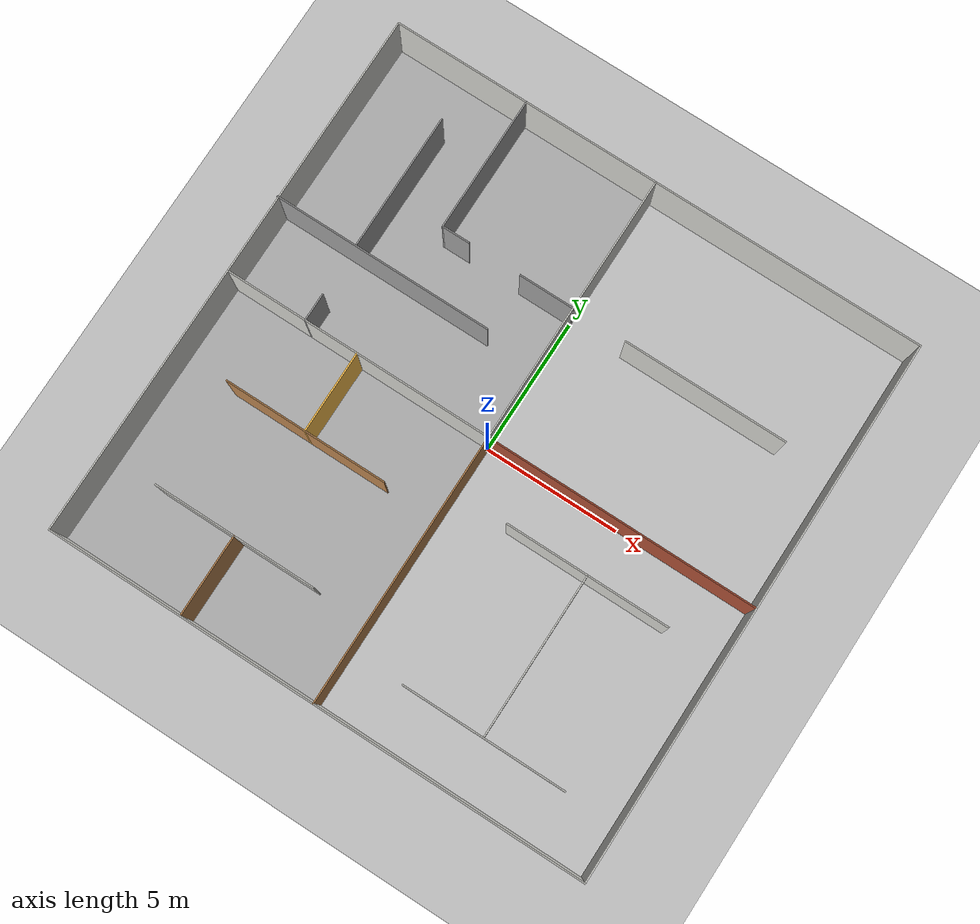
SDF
<sdf version="1.6">
 <world name="default">
  <model name="ground_plane">
   <static>1</static>
   <link name="link">
    <collision name="collision">
     <geometry><plane><normal>0 0 1</normal><size>100 100</size></plane></geometry>
     <surface><friction><ode><mu>100</mu><mu2>50</mu2></ode></friction></surface>
    </collision>
    <visual name="visual">
     <cast_shadows>0</cast_shadows>
     <geometry><plane><normal>0 0 1</normal><size>100 100</size></plane></geometry>
     <material>
      <script><uri>file://media/materials/scripts/gazebo.material</uri><name>Gazebo/Grey</name></script>
     </material>
    </visual>
   </link>
  </model>
  <model name="Floor_room2">
   <link name="main">
    <pose>0 0 0.01 0 -0 0</pose>
    <collision name="main_Collision">
     <geometry><box><size>10 10 0.001</size></box></geometry>
     <surface><friction><ode><mu>100</mu><mu2>100</mu2></ode></friction></surface>
    </collision>
    <visual name="main_Visual">
     <geometry><box><size>10 10 0.001</size></box></geometry>
     <material>
      <script>
       <uri>file:///home/linhai/.gazebo/models/Floor_room2/materials/scripts</uri>
       <uri>file:///home/linhai/.gazebo/models/Floor_room2/materials/textures</uri>
       <name>floor_room2</name>
      </script>
     </material>
    </visual>
   </link>
   <static>1</static>
   <pose>-4.9783 5.02752 -0.01 0 -0 0</pose>
  </model>
  <model name="Floor_room3">
   <link name="main">
    <pose>0 0 0.01 0 -0 0</pose>
    <collision name="main_Collision">
     <geometry><box><size>10 10 0.001</size></box></geometry>
     <surface><friction><ode><mu>100</mu><mu2>100</mu2></ode></friction></surface>
    </collision>
    <visual name="main_Visual">
     <geometry><box><size>10 10 0.001</size></box></geometry>
     <material>
      <script>
       <uri>file:///home/linhai/.gazebo/models/Floor_room3/materials/scripts</uri>
       <uri>file:///home/linhai/.gazebo/models/Floor_room3/materials/textures</uri>
       <name>floor_room3</name>
      </script>
     </material>
    </visual>
   </link>
   <static>1</static>
   <pose>-5.00295 -4.97669 -0.01 0 -0 0</pose>
  </model>
  <model name="20x20_4_closed_room">
   <pose>-0.009815 0.003303 0 0 -0 0</pose>
   <link name="Wall_12">
    <collision name="Wall_12_Collision">
     <geometry><box><size>10.05 0.05 2.5</size></box></geometry>
     <pose>0 0 1.25 0 -0 0</pose>
    </collision>
    <visual name="Wall_12_Visual">
     <pose>0 0 1.25 0 -0 0</pose>
     <geometry><box><size>10.05 0.05 2.5</size></box></geometry>
     <material>
      <script><uri>file://media/materials/scripts/gazebo.material</uri><name>Gazebo/CeilingTiled</name></script>
      <ambient>1 0.764706 0.305882 1</ambient>
     </material>
    </visual>
    <pose>10.0205 5.00012 0 0 0 -1.5708</pose>
   </link>
   <link name="Wall_13">
    <collision name="Wall_13_Collision">
     <geometry><box><size>10.05 0.05 2.5</size></box></geometry>
     <pose>0 0 1.25 0 -0 0</pose>
    </collision>
    <visual name="Wall_13_Visual">
     <pose>0 0 1.25 0 -0 0</pose>
     <geometry><box><size>10.05 0.05 2.5</size></box></geometry>
     <material>
      <script><uri>file://media/materials/scripts/gazebo.material</uri><name>Gazebo/Bricks</name></script>
      <ambient>0.996078 0.47451 0.0196078 1</ambient>
     </material>
    </visual>
    <pose>5.02047 0.000125 0 0 -0 3.14159</pose>
   </link>
   <link name="Wall_16">
    <collision name="Wall_16_Collision">
     <geometry><box><size>10.05 0.05 2.5</size></box></geometry>
     <pose>0 0 1.25 0 -0 0</pose>
    </collision>
    <visual name="Wall_16_Visual">
     <pose>0 0 1.25 0 -0 0</pose>
     <geometry><box><size>10.05 0.05 2.5</size></box></geometry>
     <material>
      <script><uri>file://media/materials/scripts/gazebo.material</uri><name>Gazebo/CeilingTiled</name></script>
      <ambient>0.435294 0.796078 0.67451 1</ambient>
     </material>
    </visual>
    <pose>-9.97953 -4.99988 0 0 0 -1.5708</pose>
   </link>
   <link name="Wall_17">
    <collision name="Wall_17_Collision">
     <geometry><box><size>10.05 0.05 2.5</size></box></geometry>
     <pose>0 0 1.25 0 -0 0</pose>
    </collision>
    <visual name="Wall_17_Visual">
     <pose>0 0 1.25 0 -0 0</pose>
     <geometry><box><size>10.05 0.05 2.5</size></box></geometry>
     <material>
      <script><uri>file://media/materials/scripts/gazebo.material</uri><name>Gazebo/CeilingTiled</name></script>
      <ambient>0.435294 0.796078 0.67451 1</ambient>
     </material>
    </visual>
    <pose>-4.97953 -9.99987 0 0 -0 0</pose>
   </link>
   <link name="Wall_18">
    <collision name="Wall_18_Collision">
     <geometry><box><size>10.0505 0.05 2.5</size></box></geometry>
     <pose>0 0 1.25 0 -0 0</pose>
    </collision>
    <visual name="Wall_18_Visual">
     <pose>0 0 1.25 0 -0 0</pose>
     <geometry><box><size>10.0505 0.05 2.5</size></box></geometry>
     <material>
      <script><uri>file://media/materials/scripts/gazebo.material</uri><name>Gazebo/Wood</name></script>
      <ambient>0.435294 0.796078 0.67451 1</ambient>
     </material>
    </visual>
    <pose>0.02047 -4.99988 0 0 -0 1.5708</pose>
   </link>
   <link name="Wall_20">
    <collision name="Wall_20_Collision">
     <geometry><box><size>10.05 0.05 2.5</size></box></geometry>
     <pose>0 0 1.25 0 -0 0</pose>
    </collision>
    <visual name="Wall_20_Visual">
     <pose>0 0 1.25 0 -0 0</pose>
     <geometry><box><size>10.05 0.05 2.5</size></box></geometry>
     <material>
      <script><uri>file://media/materials/scripts/gazebo.material</uri><name>Gazebo/CeilingTiled</name></script>
      <ambient>0.760784 0.662745 0.627451 1</ambient>
     </material>
    </visual>
    <pose>5.02047 -9.99987 0 0 -0 0</pose>
   </link>
   <link name="Wall_21">
    <collision name="Wall_21_Collision">
     <geometry><box><size>10.05 0.05 2.5</size></box></geometry>
     <pose>0 0 1.25 0 -0 0</pose>
    </collision>
    <visual name="Wall_21_Visual">
     <pose>0 0 1.25 0 -0 0</pose>
     <geometry><box><size>10.05 0.05 2.5</size></box></geometry>
     <material>
      <script><uri>file://media/materials/scripts/gazebo.material</uri><name>Gazebo/CeilingTiled</name></script>
      <ambient>0.760784 0.662745 0.627451 1</ambient>
     </material>
    </visual>
    <pose>10.0205 -4.99988 0 0 -0 1.5708</pose>
   </link>
   <link name="Wall_27">
    <collision name="Wall_27_Collision">
     <geometry><box><size>5.05025 0.05 2.5</size></box></geometry>
     <pose>0 0 1.25 0 -0 0</pose>
    </collision>
    <visual name="Wall_27_Visual">
     <pose>0 0 1.25 0 -0 0</pose>
     <geometry><box><size>5.05025 0.05 2.5</size></box></geometry>
     <material>
      <script><uri>file://media/materials/scripts/gazebo.material</uri><name>Gazebo/Grey</name></script>
      <ambient>1 1 1 1</ambient>
     </material>
    </visual>
    <pose>-6.97953 5.50012 0 0 -0 1.5708</pose>
   </link>
   <link name="Wall_29">
    <collision name="Wall_29_Collision">
     <geometry><box><size>5.05 0.05 2.5</size></box></geometry>
     <pose>0 0 1.25 0 -0 0</pose>
    </collision>
    <visual name="Wall_29_Visual">
     <pose>0 0 1.25 0 -0 0</pose>
     <geometry><box><size>5.05 0.05 2.5</size></box></geometry>
     <material>
      <script><uri>file://media/materials/scripts/gazebo.material</uri><name>Gazebo/Grey</name></script>
      <ambient>1 1 1 1</ambient>
     </material>
    </visual>
    <pose>-4.97953 7.50012 0 0 -0 1.5708</pose>
   </link>
   <link name="Wall_3">
    <collision name="Wall_3_Collision">
     <geometry><box><size>10.05 0.05 2.5</size></box></geometry>
     <pose>0 0 1.25 0 -0 0</pose>
    </collision>
    <visual name="Wall_3_Visual">
     <pose>0 0 1.25 0 -0 0</pose>
     <geometry><box><size>10.05 0.05 2.5</size></box></geometry>
     <material>
      <script><uri>file://media/materials/scripts/gazebo.material</uri><name>Gazebo/CeilingTiled</name></script>
      <ambient>1 1 1 1</ambient>
     </material>
    </visual>
    <pose>-4.97953 10.0001 0 0 -0 0</pose>
   </link>
   <link name="Wall_31">
    <collision name="Wall_31_Collision">
     <geometry><box><size>1.05 0.05 2.5</size></box></geometry>
     <pose>0 0 1.25 0 -0 0</pose>
    </collision>
    <visual name="Wall_31_Visual">
     <pose>0 0 1.25 0 -0 0</pose>
     <geometry><box><size>1.05 0.05 2.5</size></box></geometry>
     <material>
      <script><uri>file://media/materials/scripts/gazebo.material</uri><name>Gazebo/Grey</name></script>
      <ambient>1 1 1 1</ambient>
     </material>
    </visual>
    <pose>-4.47953 5.00012 0 0 -0 0</pose>
   </link>
   <link name="Wall_33">
    <collision name="Wall_33_Collision">
     <geometry><box><size>2.05 0.05 2.5</size></box></geometry>
     <pose>0 0 1.25 0 -0 0</pose>
    </collision>
    <visual name="Wall_33_Visual">
     <pose>0 0 1.25 0 -0 0</pose>
     <geometry><box><size>2.05 0.05 2.5</size></box></geometry>
     <material>
      <script><uri>file://media/materials/scripts/gazebo.material</uri><name>Gazebo/Grey</name></script>
      <ambient>1 1 1 1</ambient>
     </material>
    </visual>
    <pose>-0.97953 5.00012 0 0 -0 0</pose>
   </link>
   <link name="Wall_37">
    <collision name="Wall_37_Collision">
     <geometry><box><size>1.05 0.05 2.5</size></box></geometry>
     <pose>0 0 1.25 0 -0 0</pose>
    </collision>
    <visual name="Wall_37_Visual">
     <pose>0 0 1.25 0 -0 0</pose>
     <geometry><box><size>1.05 0.05 2.5</size></box></geometry>
     <material>
      <script><uri>file://media/materials/scripts/gazebo.material</uri><name>Gazebo/Grey</name></script>
      <ambient>1 1 1 1</ambient>
     </material>
    </visual>
    <pose>-6.97953 0.500125 0 0 0 -1.5708</pose>
   </link>
   <link name="Wall_39">
    <collision name="Wall_39_Collision">
     <geometry><box><size>8.14988 0.05 2.5</size></box></geometry>
     <pose>0 0 1.25 0 -0 0</pose>
    </collision>
    <visual name="Wall_39_Visual">
     <pose>0 0 1.25 0 -0 0</pose>
     <geometry><box><size>8.14988 0.05 2.5</size></box></geometry>
     <material>
      <script><uri>file://media/materials/scripts/gazebo.material</uri><name>Gazebo/Grey</name></script>
      <ambient>1 1 1 1</ambient>
     </material>
    </visual>
    <pose>-5.97053 2.93213 0 0 -0 0</pose>
   </link>
   <link name="Wall_4">
    <collision name="Wall_4_Collision">
     <geometry><box><size>10.05 0.05 2.5</size></box></geometry>
     <pose>0 0 1.25 0 -0 0</pose>
    </collision>
    <visual name="Wall_4_Visual">
     <pose>0 0 1.25 0 -0 0</pose>
     <geometry><box><size>10.05 0.05 2.5</size></box></geometry>
     <material>
      <script><uri>file://media/materials/scripts/gazebo.material</uri><name>Gazebo/CeilingTiled</name></script>
      <ambient>1 1 1 1</ambient>
     </material>
    </visual>
    <pose>0.02047 5.00012 0 0 0 -1.5708</pose>
   </link>
   <link name="Wall_43">
    <collision name="Wall_43_Collision">
     <geometry><box><size>6.05 0.05 2.5</size></box></geometry>
     <pose>0 0 1.25 0 -0 0</pose>
    </collision>
    <visual name="Wall_43_Visual">
     <pose>0 0 1.25 0 -0 0</pose>
     <geometry><box><size>6.05 0.05 2.5</size></box></geometry>
     <material>
      <script><uri>file://media/materials/scripts/gazebo.material</uri><name>Gazebo/CeilingTiled</name></script>
      <ambient>0.435294 0.796078 0.67451 1</ambient>
     </material>
    </visual>
    <pose>5.02047 5.00012 0 0 -0 0</pose>
   </link>
   <link name="Wall_5">
    <collision name="Wall_5_Collision">
     <geometry><box><size>10.05 0.05 2.5</size></box></geometry>
     <pose>0 0 1.25 0 -0 0</pose>
    </collision>
    <visual name="Wall_5_Visual">
     <pose>0 0 1.25 0 -0 0</pose>
     <geometry><box><size>10.05 0.05 2.5</size></box></geometry>
     <material>
      <script><uri>file://media/materials/scripts/gazebo.material</uri><name>Gazebo/CeilingTiled</name></script>
      <ambient>1 1 1 1</ambient>
     </material>
    </visual>
    <pose>-4.97953 0.000125 0 0 -0 3.14159</pose>
   </link>
   <link name="Wall_51">
    <collision name="Wall_51_Collision">
     <geometry><box><size>6.05 0.05 2.5</size></box></geometry>
     <pose>0 0 1.25 0 -0 0</pose>
    </collision>
    <visual name="Wall_51_Visual">
     <pose>0 0 1.25 0 -0 0</pose>
     <geometry><box><size>6.05 0.05 2.5</size></box></geometry>
     <material>
      <script><uri>file://media/materials/scripts/gazebo.material</uri><name>Gazebo/Wood</name></script>
      <ambient>1 1 1 1</ambient>
     </material>
    </visual>
    <pose>-4.97953 -2.99987 0 0 -0 0</pose>
   </link>
   <link name="Wall_54">
    <collision name="Wall_54_Collision">
     <geometry><box><size>3.05 0.05 2.5</size></box></geometry>
     <pose>0 0 1.25 0 -0 0</pose>
    </collision>
    <visual name="Wall_54_Visual">
     <pose>0 0 1.25 0 -0 0</pose>
     <geometry><box><size>3.05 0.05 2.5</size></box></geometry>
     <material>
      <script><uri>file://media/materials/scripts/gazebo.material</uri><name>Gazebo/Grey</name></script>
      <ambient>1 0.764706 0.305882 1</ambient>
     </material>
    </visual>
    <pose>-4.97953 -1.49988 0 0 0 -1.5708</pose>
   </link>
   <link name="Wall_6">
    <collision name="Wall_6_Collision">
     <geometry><box><size>10.05 0.05 2.5</size></box></geometry>
     <pose>0 0 1.25 0 -0 0</pose>
    </collision>
    <visual name="Wall_6_Visual">
     <pose>0 0 1.25 0 -0 0</pose>
     <geometry><box><size>10.05 0.05 2.5</size></box></geometry>
     <material>
      <script><uri>file://media/materials/scripts/gazebo.material</uri><name>Gazebo/CeilingTiled</name></script>
      <ambient>1 1 1 1</ambient>
     </material>
    </visual>
    <pose>-9.97953 5.00012 0 0 -0 1.5708</pose>
   </link>
   <link name="Wall_60">
    <collision name="Wall_60_Collision">
     <geometry><box><size>6.05 0.05 2.5</size></box></geometry>
     <pose>0 0 1.25 0 -0 0</pose>
    </collision>
    <visual name="Wall_60_Visual">
     <pose>0 0 1.25 0 -0 0</pose>
     <geometry><box><size>6.05 0.05 2.5</size></box></geometry>
     <material>
      <script><uri>file://media/materials/scripts/gazebo.material</uri><name>Gazebo/CeilingTiled</name></script>
      <ambient>0.760784 0.662745 0.627451 1</ambient>
     </material>
    </visual>
    <pose>-4.97953 -6.99988 0 0 -0 3.14159</pose>
   </link>
   <link name="Wall_62">
    <collision name="Wall_62_Collision">
     <geometry><box><size>3.05 0.05 2.5</size></box></geometry>
     <pose>0 0 1.25 0 -0 0</pose>
    </collision>
    <visual name="Wall_62_Visual">
     <pose>0 0 1.25 0 -0 0</pose>
     <geometry><box><size>3.05 0.05 2.5</size></box></geometry>
     <material>
      <script><uri>file://media/materials/scripts/gazebo.material</uri><name>Gazebo/Wood</name></script>
      <ambient>1 1 1 1</ambient>
     </material>
    </visual>
    <pose>-4.97953 -8.49987 0 0 -0 1.5708</pose>
   </link>
   <link name="Wall_65">
    <collision name="Wall_65_Collision">
     <geometry><box><size>6.05 0.05 2.5</size></box></geometry>
     <pose>0 0 1.25 0 -0 0</pose>
    </collision>
    <visual name="Wall_65_Visual">
     <pose>0 0 1.25 0 -0 0</pose>
     <geometry><box><size>6.05 0.05 2.5</size></box></geometry>
     <material>
      <script><uri>file://media/materials/scripts/gazebo.material</uri><name>Gazebo/CeilingTiled</name></script>
      <ambient>1 0.764706 0.305882 1</ambient>
     </material>
    </visual>
    <pose>5.02047 -7.99988 0 0 -0 0</pose>
   </link>
   <link name="Wall_67">
    <collision name="Wall_67_Collision">
     <geometry><box><size>6.05 0.05 2.5</size></box></geometry>
     <pose>0 0 1.25 0 -0 0</pose>
    </collision>
    <visual name="Wall_67_Visual">
     <pose>0 0 1.25 0 -0 0</pose>
     <geometry><box><size>6.05 0.05 2.5</size></box></geometry>
     <material>
      <script><uri>file://media/materials/scripts/gazebo.material</uri><name>Gazebo/CeilingTiled</name></script>
      <ambient>0.996078 0.47451 0.0196078 1</ambient>
     </material>
    </visual>
    <pose>5.02047 -4.99988 0 0 -0 1.5708</pose>
   </link>
   <link name="Wall_69">
    <collision name="Wall_69_Collision">
     <geometry><box><size>6.05 0.05 2.5</size></box></geometry>
     <pose>0 0 1.25 0 -0 0</pose>
    </collision>
    <visual name="Wall_69_Visual">
     <pose>0 0 1.25 0 -0 0</pose>
     <geometry><box><size>6.05 0.05 2.5</size></box></geometry>
     <material>
      <script><uri>file://media/materials/scripts/gazebo.material</uri><name>Gazebo/CeilingTiled</name></script>
      <ambient>1 1 1 1</ambient>
     </material>
    </visual>
    <pose>5.02047 -1.99988 0 0 -0 0</pose>
   </link>
   <link name="Wall_8">
    <collision name="Wall_8_Collision">
     <geometry><box><size>10.05 0.05 2.5</size></box></geometry>
     <pose>0 0 1.25 0 -0 0</pose>
    </collision>
    <visual name="Wall_8_Visual">
     <pose>0 0 1.25 0 -0 0</pose>
     <geometry><box><size>10.05 0.05 2.5</size></box></geometry>
     <material>
      <script><uri>file://media/materials/scripts/gazebo.material</uri><name>Gazebo/CeilingTiled</name></script>
      <ambient>1 0.764706 0.305882 1</ambient>
     </material>
    </visual>
    <pose>5.02047 10.0001 0 0 -0 0</pose>
   </link>
   <static>1</static>
  </model>
 </world>
</sdf>
